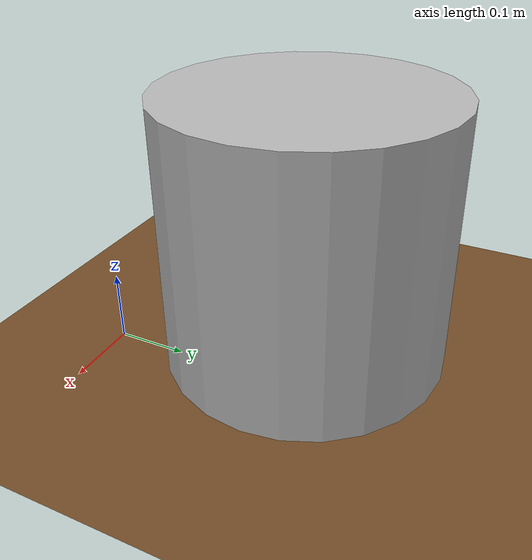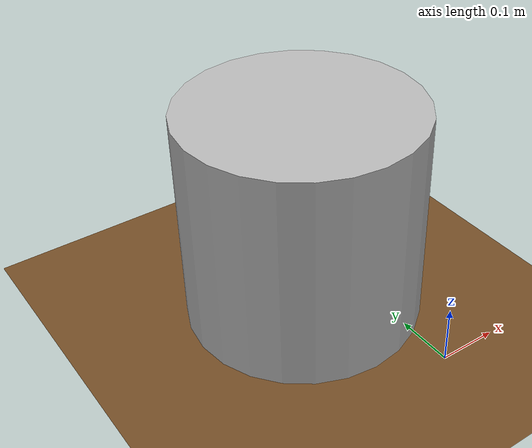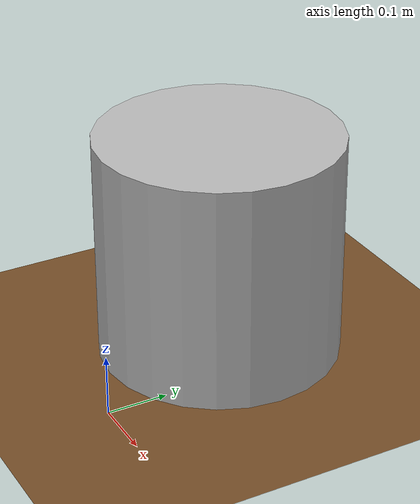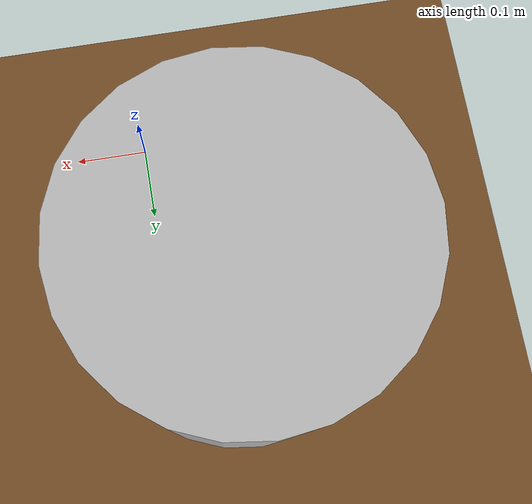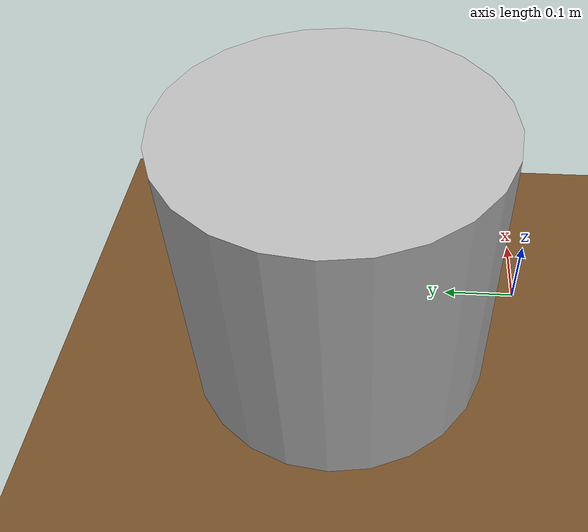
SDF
<sdf version="1.6">
  <world name="small_feild">
    <physics name="fast" type="dart">
      <max_step_size>0.005</max_step_size>
      <real_time_factor>0</real_time_factor>
      <dart>
        <solver>
          <solver_type>pgs</solver_type>
        </solver>
        <collision_detector>ode</collision_detector>
      </dart>
    </physics>
    <plugin
      filename="gz-sim-physics-system"
      name="gz::sim::systems::Physics">
    </plugin>
    <plugin
      filename="gz-sim-user-commands-system"
      name="gz::sim::systems::UserCommands">
    </plugin>
    <plugin
      filename="gz-sim-scene-broadcaster-system"
      name="gz::sim::systems::SceneBroadcaster">
    </plugin>
    <plugin
      filename="gz-sim-contact-system"
      name="gz::sim::systems::Contact">
    </plugin>
    <plugin
      filename="gz-sim-sensors-system"
      name="gz::sim::systems::Sensors">
      <render_engine>ogre2</render_engine>
    </plugin>

    <light type="directional" name="sun">
      <cast_shadows>false</cast_shadows>
      <pose>0 0 10 0 0 0</pose>
      <diffuse>0.8 0.8 0.8 1</diffuse>
      <specular>0.2 0.2 0.2 1</specular>
      <attenuation>
        <range>1000</range>
        <constant>0.9</constant>
        <linear>0.01</linear>
        <quadratic>0.001</quadratic>
      </attenuation>
      <direction>-0.5 0.1 -0.9</direction>
    </light>

    <gravity>0 0 -9.8</gravity>
    <atmosphere type="adiabatic"/>

    <scene>
      <ambient>0.4 0.4 0.4 1</ambient>
      <background>0.7 0.8 1.0 1</background>
      <grid>false</grid>
    </scene>

    <!-- Small ground plane under the robot -->
    <model name="ground_plane">
      <static>true</static>
      <link name="link">
        <collision name="collision">
          <geometry>
            <plane>
              <normal>0 0 1</normal>
              <size>3 3</size>
            </plane>
          </geometry>
          <surface>
            <friction>
              <ode>
                <mu>50</mu>
              </ode>
            </friction>
          </surface>
        </collision>
        <visual name="visual">
          <geometry>
            <plane>
              <normal>0 0 1</normal>
              <size>3 3</size>
            </plane>
          </geometry>
          <material>
            <ambient>0.45 0.3 0.15 1</ambient>
            <diffuse>0.45 0.3 0.15 1</diffuse>
            <specular>0.1 0.1 0.1 1</specular>
          </material>
        </visual>
      </link>
    </model>

    <!-- Single weed plant along Y axis, within workspace -->
    <include>
      <uri>model://plant</uri>
      <name>weed_target</name>
      <pose>-0.1 0.25 0 0 0 0</pose>
    </include>

  </world>
</sdf>

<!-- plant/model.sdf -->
<sdf version="1.6">
  <model name="robotics_testlabs/plant">
    <link name="1_link">
      <collision name="1_col">
        <geometry>
          <cylinder>
            <length>0.375</length>
            <radius>0.2</radius>
          </cylinder>
        </geometry>
      </collision>
      <visual name="1_vis">
        <geometry>
          <cylinder>
            <length>0.375</length>
            <radius>0.2</radius>
          </cylinder>
        </geometry>
      </visual>
      <pose>0 0 0.1875 0 0 0</pose>
    </link>
    <static>true</static>
  </model>
</sdf>
